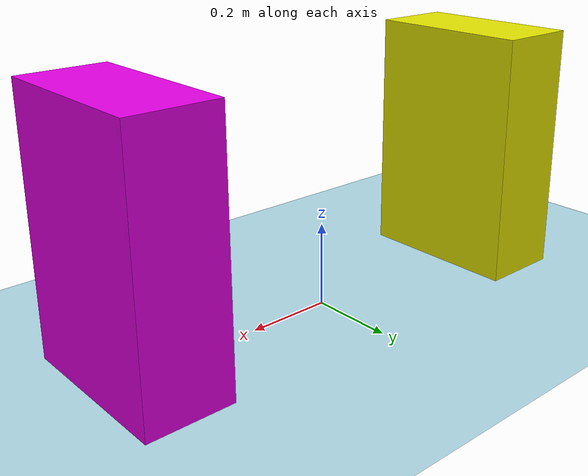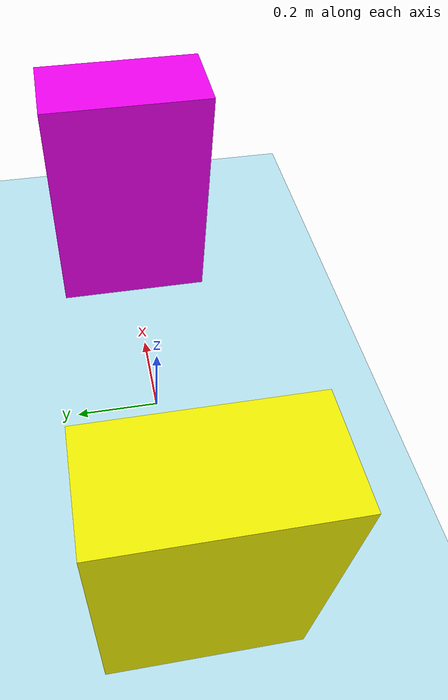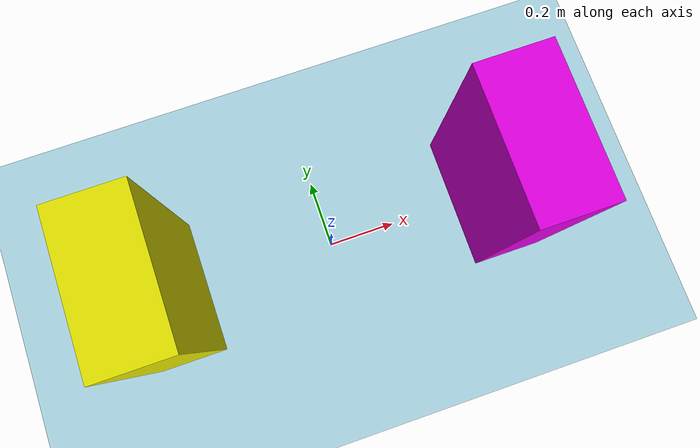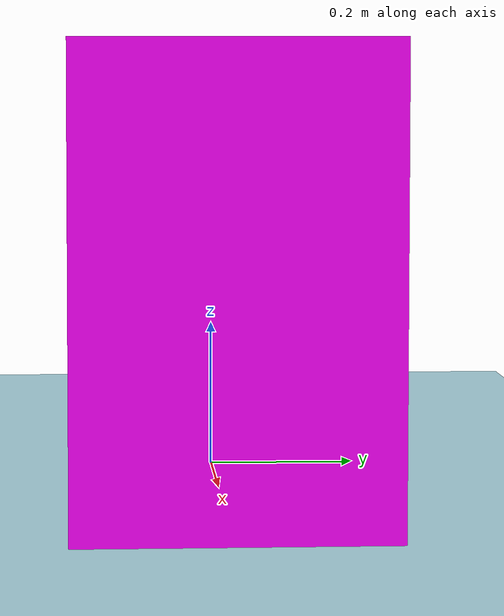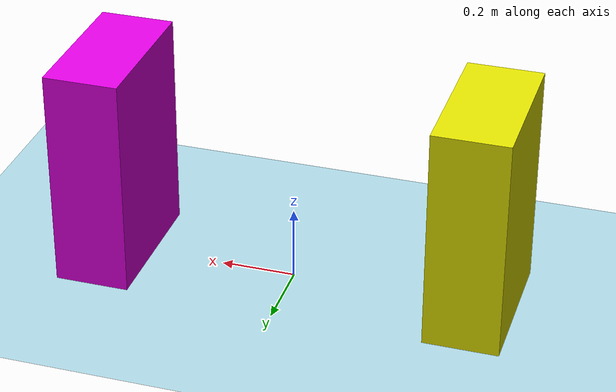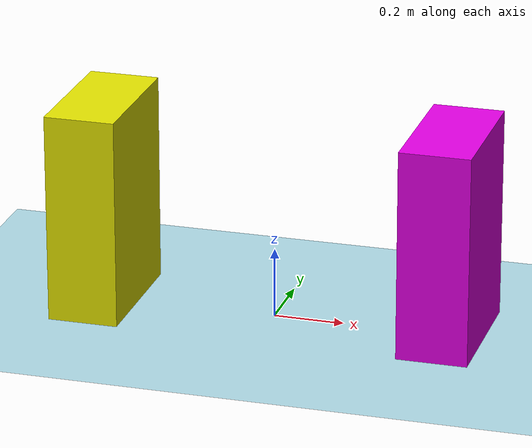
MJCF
<mujoco>
    <worldbody>
        <light diffuse=".5 .5 .5" pos="0 0 3" dir="0 0 -1"/>
        <geom type="plane" size="1 1 0.1" rgba="0.68 0.85 0.9 1"/>
        <body pos="-0.5 0 .3">
            <joint type="free"/>
            <geom type="box" size=".1 .2 .3" rgba=".9 .9 0 1"/>
            <camera name="robot_camera" pos="0.1 0 0" euler="0 -90 -90"/>
        </body>
        <body pos="0.5 0 .3">
            <geom type="box" size=".1 .2 .3" rgba=".9 0 .9 1"/>
        </body>
    </worldbody>
</mujoco>
